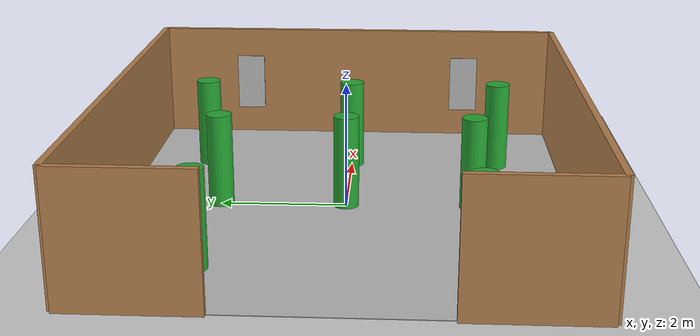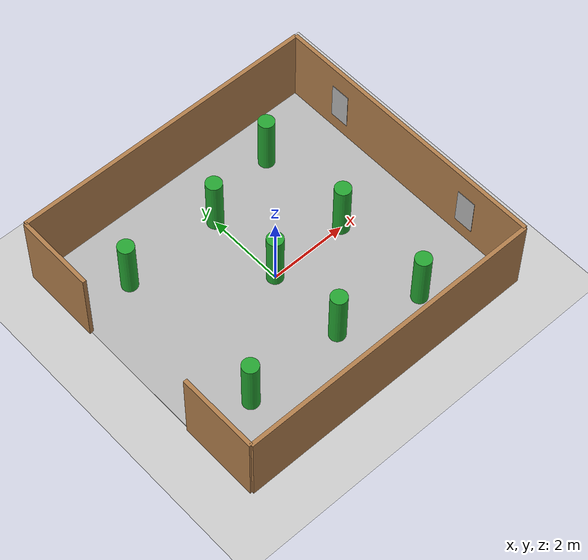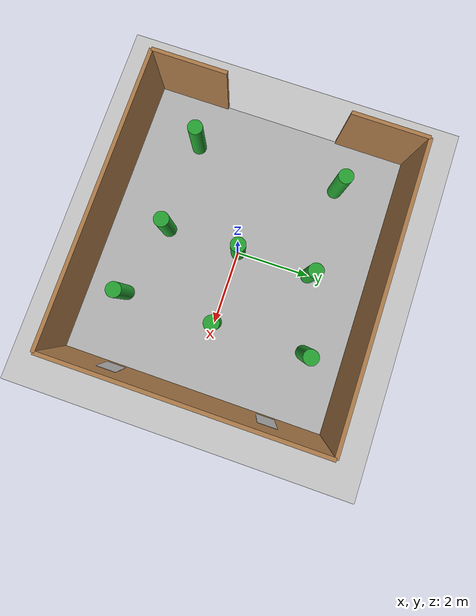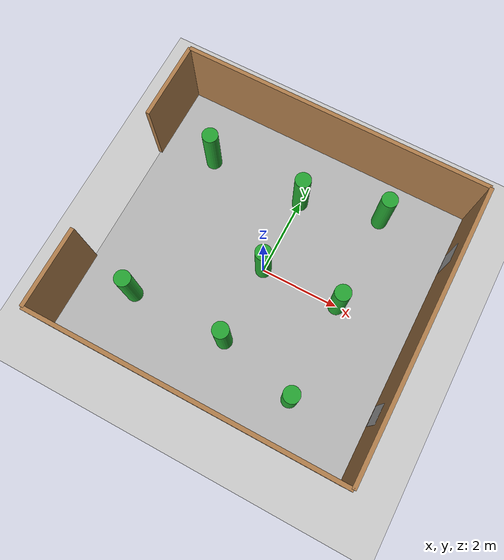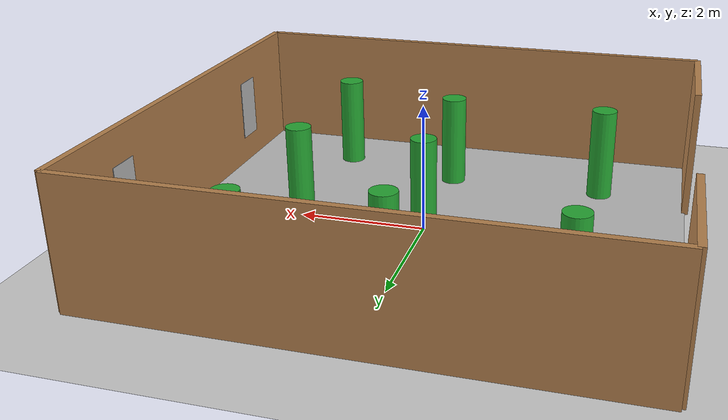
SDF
<sdf version="1.5">
 <world name="default">
  <light type="directional" name="sun">
   <cast_shadows>false</cast_shadows>
   <pose>0 0 100 0 0 0</pose>
   <diffuse>0.8 0.8 0.8 1</diffuse>
   <specular>0.9 0.9 0.9 1</specular>
   <attenuation>
    <range>1000</range>
    <constant>0.9</constant>
    <linear>0.01</linear>
    <quadratic>0.001</quadratic>
   </attenuation>
   <direction>0.2 0.2 -0.9</direction>
  </light>
  <include><uri>model://ground_plane</uri></include>
  <physics type="ode">
   <gravity>0 0 -9.8066</gravity>
   <ode>
    <solver>
     <type>quick</type>
     <iters>150</iters>
     <sor>1.3</sor>
     <use_dynamic_moi_rescaling>0</use_dynamic_moi_rescaling>
    </solver>
    <constraints>
     <cfm>0.00001</cfm>
     <erp>0.2</erp>
     <contact_max_correcting_vel>1000</contact_max_correcting_vel>
     <contact_surface_layer>0.01</contact_surface_layer>
    </constraints>
   </ode>
   <max_step_size>0.004</max_step_size>
   <real_time_factor>1000.0</real_time_factor>
   <real_time_update_rate>250</real_time_update_rate>
   <magnetic_field>6.0e-6 2.3e-5 -4.2e-5</magnetic_field>
  </physics>
  <model name="texture">
   <static>true</static>
   <link name="floor_texture">
    <pose>0 0 0.01 0 0.0 0</pose>
    <visual name="visual">
     <cast_shadows>false</cast_shadows>
     <geometry><box><size>7.8 7.2 0.01</size></box></geometry>
     <material><script><uri>model://texture/texture.material</uri><name>Floor</name></script></material>
    </visual>
   </link>
   <link name="poster1">
    <pose>3.8 2 1 0 1.57 0</pose>
    <visual name="visual">
     <cast_shadows>false</cast_shadows>
     <geometry><box><size>1.0 0.5 0.01</size></box></geometry>
     <material><script><uri>model://texture/texture.material</uri><name>Poster2</name></script></material>
    </visual>
   </link>
   <link name="poster2">
    <pose>3.8 -2 1 0 1.57 0</pose>
    <visual name="visual">
     <cast_shadows>false</cast_shadows>
     <geometry><box><size>1.0 0.5 0.01</size></box></geometry>
     <material><script><uri>model://texture/texture.material</uri><name>Poster4</name></script></material>
    </visual>
   </link>
  </model>
  <model name="room_wall">
   <static>true</static>
   <link name="wall_front">
    <pose>3.9 0 1 0 -0 1.57</pose>
    <inertial><mass>2.0</mass></inertial>
    <collision name="collision"><geometry><box><size>7.2 0.1 2</size></box></geometry></collision>
    <visual name="visual">
     <geometry><box><size>7.2 0.1 2</size></box></geometry>
     <material>
      <script><uri>file://media/materials/scripts/gazebo.material</uri><name>Gazebo/Wood</name></script>
      <ambient>1 1 1 1</ambient>
     </material>
    </visual>
   </link>
   <link name="wall_back1">
    <pose>-3.9 -2.6 1 0 -0 1.57</pose>
    <inertial><mass>2.0</mass></inertial>
    <collision name="collision"><geometry><box><size>2 0.1 2</size></box></geometry></collision>
    <visual name="visual">
     <geometry><box><size>2 0.1 2</size></box></geometry>
     <material>
      <script><uri>file://media/materials/scripts/gazebo.material</uri><name>Gazebo/Wood</name></script>
      <ambient>1 1 1 1</ambient>
     </material>
    </visual>
   </link>
   <link name="wall_back2">
    <pose>-3.9 2.6 1 0 -0 1.57</pose>
    <inertial><mass>2.0</mass></inertial>
    <collision name="collision"><geometry><box><size>2 0.1 2</size></box></geometry></collision>
    <visual name="visual">
     <geometry><box><size>2 0.1 2</size></box></geometry>
     <material>
      <script><uri>file://media/materials/scripts/gazebo.material</uri><name>Gazebo/Wood</name></script>
      <ambient>1 1 1 1</ambient>
     </material>
    </visual>
   </link>
   <link name="wall_right">
    <pose>-0 -3.6 1 0 -0 0</pose>
    <inertial><mass>2.0</mass></inertial>
    <collision name="collision"><geometry><box><size>7.8 0.1 2</size></box></geometry></collision>
    <visual name="visual">
     <geometry><box><size>7.8 0.1 2</size></box></geometry>
     <material>
      <script><uri>file://media/materials/scripts/gazebo.material</uri><name>Gazebo/Wood</name></script>
      <ambient>1 1 1 1</ambient>
     </material>
    </visual>
   </link>
   <link name="wall_left">
    <pose>-0 3.6 1 0 -0 0</pose>
    <inertial><mass>2.0</mass></inertial>
    <collision name="collision"><geometry><box><size>7.8 0.1 2</size></box></geometry></collision>
    <visual name="visual">
     <geometry><box><size>7.8 0.1 2</size></box></geometry>
     <material>
      <script><uri>file://media/materials/scripts/gazebo.material</uri><name>Gazebo/Wood</name></script>
      <ambient>1 1 1 1</ambient>
     </material>
    </visual>
   </link>
  </model>
  <model name="obstacle">
   <static>true</static>
   <link name="pillar_1">
    <pose>2.0 2.5 0.75 0 -0 0</pose>
    <visual name="visual">
     <geometry><cylinder><radius>0.2</radius><length>1.5</length></cylinder></geometry>
     <material>
      <script><uri>file://media/materials/scripts/gazebo.material</uri><name>Gazebo/Green</name></script>
     </material>
    </visual>
    <collision name="collision">
     <geometry><cylinder><radius>0.2</radius><length>1.5</length></cylinder></geometry>
    </collision>
   </link>
   <link name="pillar_2">
    <pose>2.0 0 0.75 0 -0 0</pose>
    <visual name="visual">
     <geometry><cylinder><radius>0.2</radius><length>1.5</length></cylinder></geometry>
     <material>
      <script><uri>file://media/materials/scripts/gazebo.material</uri><name>Gazebo/Green</name></script>
     </material>
    </visual>
    <collision name="collision">
     <geometry><cylinder><radius>0.2</radius><length>1.5</length></cylinder></geometry>
    </collision>
   </link>
   <link name="pillar_3">
    <pose>2.0 -2.5 0.75 0 -0 0</pose>
    <visual name="visual">
     <geometry><cylinder><radius>0.2</radius><length>1.5</length></cylinder></geometry>
     <material>
      <script><uri>file://media/materials/scripts/gazebo.material</uri><name>Gazebo/Green</name></script>
     </material>
    </visual>
    <collision name="collision">
     <geometry><cylinder><radius>0.2</radius><length>1.5</length></cylinder></geometry>
    </collision>
   </link>
   <link name="pillar_4">
    <pose>0.0 2.0 0.75 0 -0 0</pose>
    <visual name="visual">
     <geometry><cylinder><radius>0.2</radius><length>1.5</length></cylinder></geometry>
     <material>
      <script><uri>file://media/materials/scripts/gazebo.material</uri><name>Gazebo/Green</name></script>
     </material>
    </visual>
    <collision name="collision">
     <geometry><cylinder><radius>0.2</radius><length>1.5</length></cylinder></geometry>
    </collision>
   </link>
   <link name="pillar_5">
    <pose>0.0 -0.0 0.75 0 -0 0</pose>
    <visual name="visual">
     <geometry><cylinder><radius>0.2</radius><length>1.5</length></cylinder></geometry>
     <material>
      <script><uri>file://media/materials/scripts/gazebo.material</uri><name>Gazebo/Green</name></script>
     </material>
    </visual>
    <collision name="collision">
     <geometry><cylinder><radius>0.2</radius><length>1.5</length></cylinder></geometry>
    </collision>
   </link>
   <link name="pillar_6">
    <pose>0.0 -2.0 0.75 0 -0 0</pose>
    <visual name="visual">
     <geometry><cylinder><radius>0.2</radius><length>1.5</length></cylinder></geometry>
     <material>
      <script><uri>file://media/materials/scripts/gazebo.material</uri><name>Gazebo/Green</name></script>
     </material>
    </visual>
    <collision name="collision">
     <geometry><cylinder><radius>0.2</radius><length>1.5</length></cylinder></geometry>
    </collision>
   </link>
   <link name="pillar_7">
    <pose>-2.5 2.0 0.75 0 -0 0</pose>
    <visual name="visual">
     <geometry><cylinder><radius>0.2</radius><length>1.5</length></cylinder></geometry>
     <material>
      <script><uri>file://media/materials/scripts/gazebo.material</uri><name>Gazebo/Green</name></script>
     </material>
    </visual>
    <collision name="collision">
     <geometry><cylinder><radius>0.2</radius><length>1.5</length></cylinder></geometry>
    </collision>
   </link>
   <link name="pillar_8">
    <pose>-2.5 -2.0 0.75 0 -0 0</pose>
    <visual name="visual">
     <geometry><cylinder><radius>0.2</radius><length>1.5</length></cylinder></geometry>
     <material>
      <script><uri>file://media/materials/scripts/gazebo.material</uri><name>Gazebo/Green</name></script>
     </material>
    </visual>
    <collision name="collision">
     <geometry><cylinder><radius>0.2</radius><length>1.5</length></cylinder></geometry>
    </collision>
   </link>
  </model>
 </world>
</sdf>
